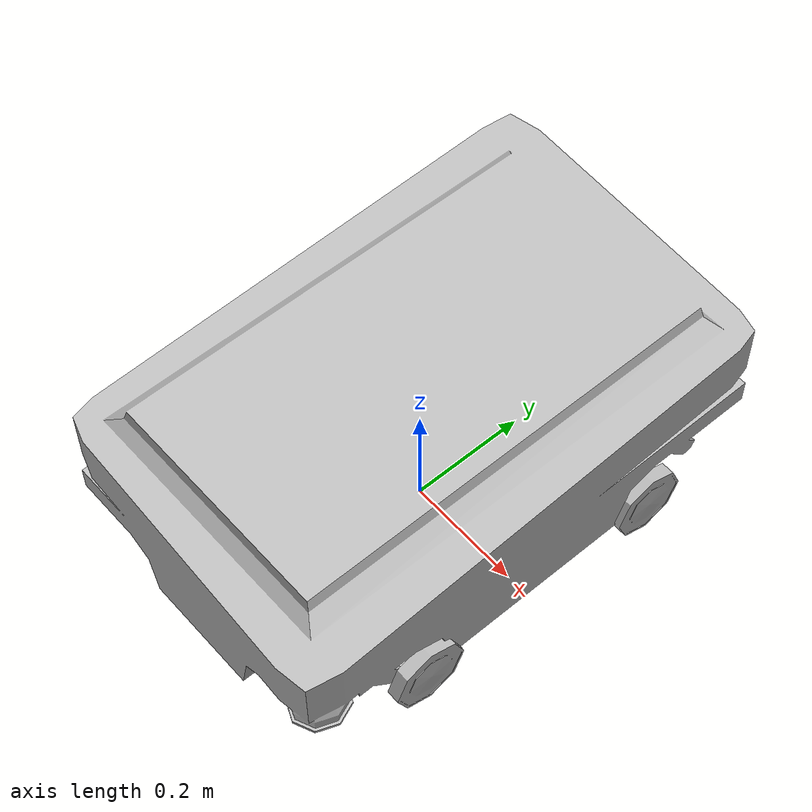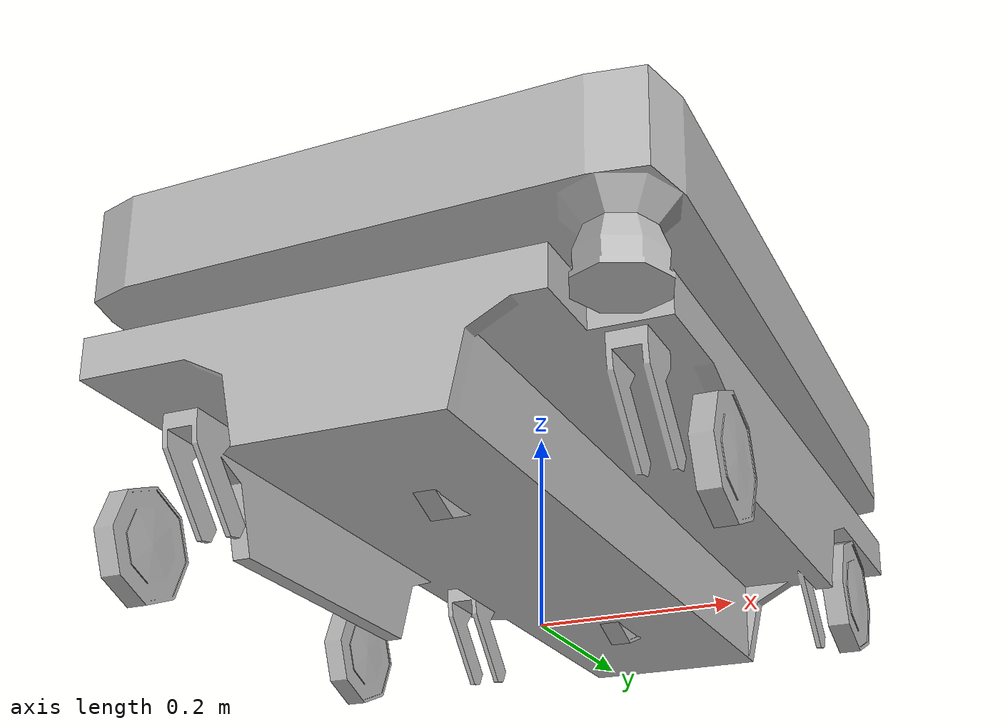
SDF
<?xml version="1.0"?>

<sdf version="1.6">
  <model name="MiR100">
    <plugin name="slotcar" filename="libslotcar.so">

      <nominal_drive_speed>0.7</nominal_drive_speed>
      <nominal_drive_acceleration>0.5</nominal_drive_acceleration>
      <max_drive_acceleration>0.75</max_drive_acceleration>

      <nominal_turn_speed>0.3</nominal_turn_speed>
      <nominal_turn_acceleration>1.5</nominal_turn_acceleration>
      <max_turn_acceleration>2.0</max_turn_acceleration>

      <tire_radius>0.1</tire_radius>
      <base_width>0.3206</base_width>

      <stop_distance>0.70</stop_distance>
      <stop_radius>0.70</stop_radius>

      <!-- Battery params -->
      <nominal_voltage>12.0</nominal_voltage>
      <nominal_capacity>24.0</nominal_capacity>
      <charging_current>5.0</charging_current>

      <!-- Physical params -->
      <mass>20.0</mass>
      <inertia>10.0</inertia>
      <friction_coefficient>0.22</friction_coefficient>

      <!-- Power systems -->
      <nominal_power>20.0</nominal_power>

    </plugin>

    <link name="body">
      <pose>0 0 0 0 0 0</pose>

      <inertial>
        <pose>0 0 0.43294142 0 0 0</pose>
        <mass>244.816489</mass>
        <inertia>
          <ixx>29.0695006</ixx>
          <iyy>26.0429852</iyy>
          <izz>23.0523441</izz>
        </inertia>
      </inertial>

      <visual name="body_visual">
        <geometry>
          <mesh>
          <uri>model://MiR100/meshes/body.obj</uri>
          </mesh>
        </geometry>
      </visual>
      <collision name="body_collision">
        <geometry>
          <mesh><uri>model://MiR100/meshes/body.obj</uri></mesh>
        </geometry>
      </collision>

      <visual name="WheelLeftFront">
        <pose>0.262 0.220 0.061 0 0 0</pose>
        <geometry>
          <mesh>
            <uri>model://MiR100/meshes/WheelMain.obj</uri>
          </mesh>
        </geometry>
      </visual>
      <collision name="front_caster_left">
        <pose>.27 .25 0.05 0 0 0</pose>
        <geometry>
          <sphere><radius>0.05</radius></sphere>
        </geometry>
        <surface>
          <friction>
            <torsional>
              <coefficient>0.0</coefficient>
            </torsional>
            <ode>
              <mu>0.0</mu>
              <mu2>0.0</mu2>
            </ode>
            <bullet>
              <friction>0.0</friction>
              <friction2>0.0</friction2>
              <rolling_friction>0.0</rolling_friction>
            </bullet>
          </friction>
        </surface>
      </collision>

      <visual name="WheelLeftBack">
        <pose>-0.334 0.220 0.061 0 0 0</pose>
        <geometry>
          <mesh>
            <uri>model://MiR100/meshes/WheelMain.obj</uri>
          </mesh>
        </geometry>
      </visual>
      <collision name="back_caster_left">
        <pose>-.34 .25 0.05 0 0 0</pose>
        <geometry>
          <sphere><radius>0.05</radius></sphere>
        </geometry>
        <surface>
          <friction>
            <torsional>
              <coefficient>0.0</coefficient>
            </torsional>
            <ode>
              <mu>0.0</mu>
              <mu2>0.0</mu2>
            </ode>
            <bullet>
              <friction>0.0</friction>
              <friction2>0.0</friction2>
              <rolling_friction>0.0</rolling_friction>
            </bullet>
          </friction>
        </surface>
      </collision>

      <visual name="WheelRightFront">
        <pose>0.262 -0.217 0.061 0 0 0</pose>
        <geometry>
          <mesh>
            <uri>model://MiR100/meshes/WheelMain.obj</uri>
          </mesh>
        </geometry>
      </visual>
      <collision name="front_caster_right">
        <pose>.27 -.25 0.05 0 0 0</pose>
        <geometry>
          <sphere><radius>0.05</radius></sphere>
        </geometry>
        <surface>
          <friction>
            <torsional>
              <coefficient>0.0</coefficient>
            </torsional>
            <ode>
              <mu>0.0</mu>
              <mu2>0.0</mu2>
            </ode>
            <bullet>
              <friction>0.0</friction>
              <friction2>0.0</friction2>
              <rolling_friction>0.0</rolling_friction>
            </bullet>
          </friction>
        </surface>
      </collision>

      <visual name="WheelRightBack">
        <pose>-0.334 -0.217 0.061 0 0 0</pose>
        <geometry>
          <mesh>
            <uri>model://MiR100/meshes/WheelMain.obj</uri>
          </mesh>
        </geometry>
      </visual>
      <collision name="back_caster_right">
        <pose>-.34 -.25 0.05 0 0 0</pose>
        <geometry>
          <sphere><radius>0.05</radius></sphere>
        </geometry>
        <surface>
          <friction>
            <torsional>
              <coefficient>0.0</coefficient>
            </torsional>
            <ode>
              <mu>0.0</mu>
              <mu2>0.0</mu2>
            </ode>
            <bullet>
              <friction>0.0</friction>
              <friction2>0.0</friction2>
              <rolling_friction>0.0</rolling_friction>
            </bullet>
          </friction>
        </surface>
      </collision>
    </link>

    <link name="suspension_tire_left">

      <pose>0 0.26 0.10 0 0 0</pose>
      <inertial>
        <mass>1.00</mass>
        <inertia>
          <ixx>1.00</ixx>
          <iyy>1.00</iyy>
          <izz>1.00</izz>
        </inertia>
      </inertial>
    </link>

    <joint name="joint_suspension_tire_left" type="prismatic">
      <parent>body</parent>
      <child>suspension_tire_left</child>
      <axis>
        <xyz>0 0 1</xyz>
        <dynamics>
          <damping>500</damping>
          <spring_reference>-0.09</spring_reference>
          <spring_stiffness>2000</spring_stiffness>
        </dynamics>
      </axis>
      <physics>
        <ode>
          <implicit_spring_damper>true</implicit_spring_damper>
        </ode>
      </physics>
    </joint>

    <link name="tire_left">
      <pose>0 0.26 0.10 0 0 0</pose>

      <inertial>
        <pose>0 0 0 0 0 0</pose>
        <mass>5.0</mass>

        <inertia>
          <ixx>0.757897446874</ixx>
          <iyy>1.302975553365</iyy>
          <izz>0.757897446874</izz>
        </inertia>
      </inertial>

      <visual name="WheelSideLeft">
        <pose>0.0 -0.032 0.0 0 0 0</pose>
        <geometry>
          <mesh>
            <uri>model://MiR100/meshes/WheelSide.obj</uri>
          </mesh>
        </geometry>
      </visual>
      <collision name="tire_left">
        <geometry>
          <sphere><radius>0.06137</radius></sphere>
        </geometry>
        <surface>
          <contact>
            <ode>
              <kp>10000000.0</kp>
              <kd>1.0</kd>
            </ode>
          </contact>
        </surface>
      </collision>
    </link>

    <joint name="joint_tire_left" type="revolute">
      <parent>suspension_tire_left</parent>
      <child>tire_left</child>
      <axis>
        <xyz>0 1 0</xyz>
      </axis>
    </joint>

    <link name="suspension_tire_right">

      <pose>0 -0.26 0.10 0 0 0</pose>
      <inertial>
        <mass>1.00</mass>
        <inertia>
          <ixx>1.00</ixx>
          <iyy>1.00</iyy>
          <izz>1.00</izz>
        </inertia>
      </inertial>
    </link>

    <joint name="joint_suspension_tire_right" type="prismatic">
      <parent>body</parent>
      <child>suspension_tire_right</child>
      <axis>
        <xyz>0 0 1</xyz>
        <dynamics>
          <damping>500</damping>
          <spring_reference>-0.09</spring_reference>
          <spring_stiffness>2000</spring_stiffness>
        </dynamics>
      </axis>
      <physics>
        <ode>
          <implicit_spring_damper>true</implicit_spring_damper>
        </ode>
      </physics>
    </joint>

    <link name="tire_right">
      <pose>0 -0.26 0.10 0 0 0</pose>

      <inertial>
        <pose>0 0 0 0 0 0</pose>

        <mass>5.0</mass>

        <inertia>
          <ixx>0.757897446874</ixx>
          <iyy>1.302975553365</iyy>
          <izz>0.757897446874</izz>
        </inertia>
      </inertial>

      <visual name="WheelSideRight">
        <pose>0.0 0.032 0.0 0 0 0</pose>
        <geometry>
          <mesh>
            <uri>model://MiR100/meshes/WheelSide.obj</uri>
          </mesh>
        </geometry>
      </visual>
      <collision name="tire_right">
        <geometry>
          <sphere><radius>0.06137</radius></sphere>
        </geometry>
        <surface>
          <contact>
            <ode>
              <kp>10000000.0</kp>
              <kd>1.0</kd>
            </ode>
          </contact>
        </surface>
      </collision>
    </link>

    <joint name="joint_tire_right" type="revolute">
      <parent>suspension_tire_right</parent>
      <child>tire_right</child>
      <axis>
        <xyz>0 1 0</xyz>
      </axis>
    </joint>
  </model>
</sdf>
